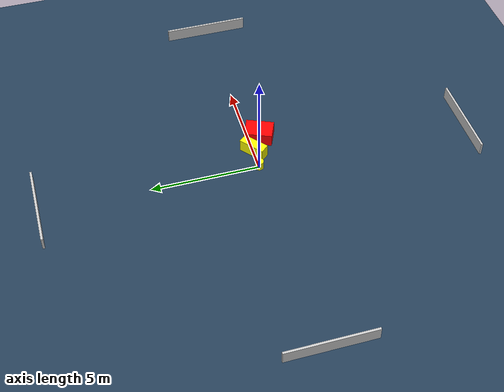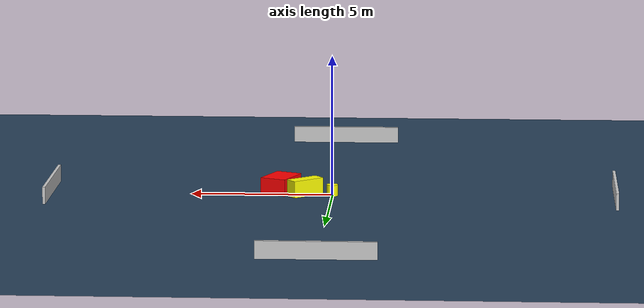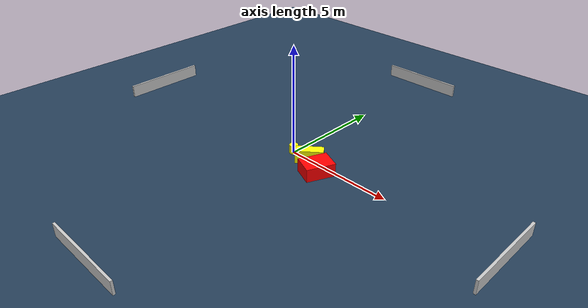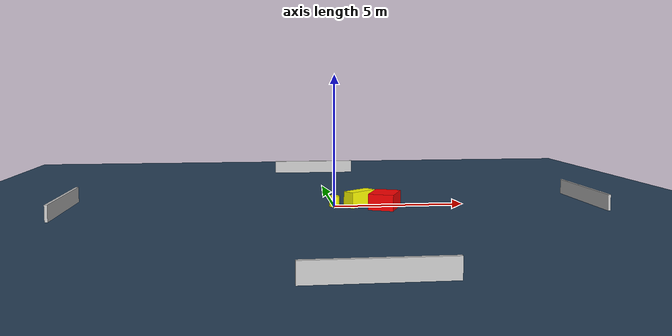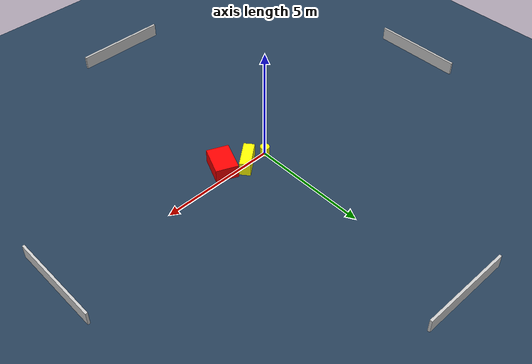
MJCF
<?xml version="1.0" ?>
<mujoco model="generated_environment">
  <option timestep="0.01" integrator="RK4" cone="elliptic"/>
  <default>
    <geom density="1"/>
  </default>
  <asset>
    <texture builtin="gradient" height="3072" name="skybox" rgb1="0.3 0.5 0.7" rgb2="0 0 0" type="skybox" width="512"/>
    <texture builtin="checker" height="300" name="groundplane" rgb1="0.2 0.3 0.4" rgb2="0.1 0.2 0.3" type="2d" width="300"/>
    <material name="groundplane" reflectance="0.2" texrepeat="5 5" texture="groundplane"/>
  </asset>
  <worldbody>
    <light dir="0 0 -1" directional="true" pos="0 0 1.5"/>
    <geom condim="3" friction="0.5 0.005 0.001" material="groundplane" name="floor" pos="0 0 0" size="0 0 0.05" type="plane"/>
    <body name="walls">
      <geom name="wall_1" condim="4" pos="-10.0 0.0 0.3" rgba="0.800000011920929 0.800000011920929 0.800000011920929 1.0" size="0.05 2.0 0.3" type="box"/>
      <geom name="wall_2" condim="4" pos="10.0 0.0 0.3" rgba="0.800000011920929 0.800000011920929 0.800000011920929 1.0" size="0.05 2.0 0.3" type="box"/>
      <geom name="wall_3" condim="4" pos="0.0 -10.0 0.3" rgba="0.800000011920929 0.800000011920929 0.800000011920929 1.0" size="2.0 0.05 0.3" type="box"/>
      <geom name="wall_4" condim="4" pos="0.0 10.0 0.3" rgba="0.800000011920929 0.800000011920929 0.800000011920929 1.0" size="2.0 0.05 0.3" type="box"/>
    </body>
    <body name="robot">
      <joint name="joint_x" type="slide" pos="0 0 0" axis="1 0 0"/>
      <joint name="joint_y" type="slide" pos="0 0 0" axis="0 1 0"/>
      <geom name="robot" type="cylinder" pos="0.0 0.0 0.2" size="0.2 0.2 0.0" mass="5.0" friction="1.0 0.005 0.0001" condim="4" rgba="1.0 1.0 0.0 1.0"/>
    </body>
    <body name="obstacle_1_movable">
      <geom name="obstacle_1_movable" condim="4" pos="0.9708981681404927 -0.015429523762913797 0.3" euler="0 0 39.06293667644895" friction="0.0 0.005 0.001" rgba="1.0 1.0 0.0 1.0" size="0.6181483471083349 0.2310657717459266 0.3" type="box" mass="0.1"/>
      <joint type="free"/>
    </body>
    <body name="obstacle_2_static">
      <geom name="obstacle_2_static" condim="4" pos="1.8573285974569829 -0.5198016140801477 0.3" euler="0 0 156.72115852060813" friction="0.0 0.005 0.001" rgba="1.0 0.0 0.0 1.0" size="0.4764931495474288 0.6514231791843927 0.3" type="box"/>
    </body>
  </worldbody>
  <actuator>
    <motor name="actuator_x" joint="joint_x" gear="1" ctrlrange="-1 1"/>
    <motor name="actuator_y" joint="joint_y" gear="1" ctrlrange="-1 1"/>
  </actuator>
</mujoco>
